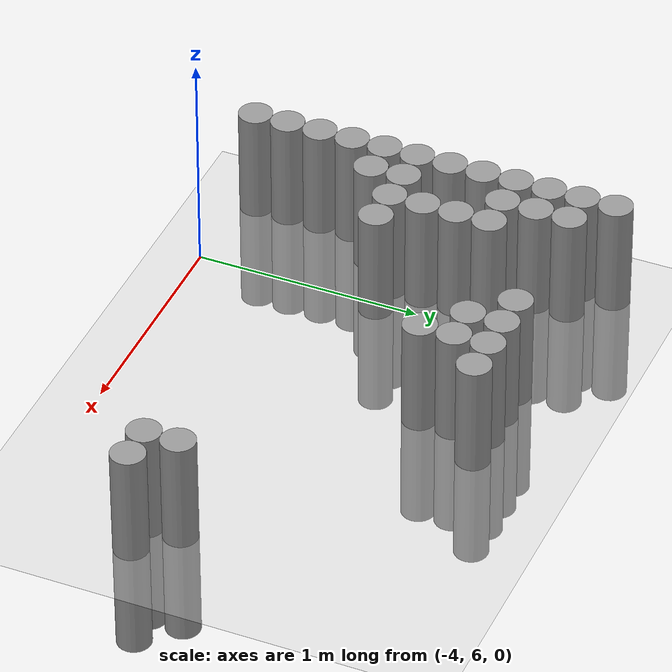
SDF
<sdf version="1.6">
 <world name="default">
  <model name="ground_plane">
   <static>1</static>
   <link name="link">
    <collision name="collision">
     <geometry><plane><normal>0 0 1</normal><size>100 100</size></plane></geometry>
     <surface><friction><ode><mu>100</mu><mu2>50</mu2></ode></friction></surface>
    </collision>
    <visual name="visual">
     <cast_shadows>0</cast_shadows>
     <geometry><plane><normal>0 0 1</normal><size>100 100</size></plane></geometry>
     <material>
      <script><uri>file://media/materials/scripts/gazebo.material</uri><name>Gazebo/Grey</name></script>
     </material>
    </visual>
   </link>
  </model>
  <model name="unit_cylinder_102">
   <pose>-4.425000 6.075000 0.000000 0.000000 0.000000 0.000000</pose>
   <link name="link">
    <inertial>
     <mass>1</mass>
     <inertia><ixx>0.145833</ixx><ixy>0</ixy><ixz>0</ixz><iyy>0.145833</iyy><iyz>0</iyz><izz>0.125</izz></inertia>
    </inertial>
    <collision name="collision">
     <geometry><cylinder><radius>0.075000</radius><length>1</length></cylinder></geometry>
    </collision>
    <visual name="visual">
     <geometry><cylinder><radius>0.075000</radius><length>1</length></cylinder></geometry>
     <material>
      <script><name>Gazebo/Grey</name><uri>file://media/materials/scripts/gazebo.material</uri></script>
     </material>
    </visual>
   </link>
  </model>
  <model name="unit_cylinder_103">
   <pose>-4.425000 6.225000 0.000000 0.000000 0.000000 0.000000</pose>
   <link name="link">
    <inertial>
     <mass>1</mass>
     <inertia><ixx>0.145833</ixx><ixy>0</ixy><ixz>0</ixz><iyy>0.145833</iyy><iyz>0</iyz><izz>0.125</izz></inertia>
    </inertial>
    <collision name="collision">
     <geometry><cylinder><radius>0.075000</radius><length>1</length></cylinder></geometry>
    </collision>
    <visual name="visual">
     <geometry><cylinder><radius>0.075000</radius><length>1</length></cylinder></geometry>
     <material>
      <script><name>Gazebo/Grey</name><uri>file://media/materials/scripts/gazebo.material</uri></script>
     </material>
    </visual>
   </link>
  </model>
  <model name="unit_cylinder_104">
   <pose>-4.425000 6.375000 0.000000 0.000000 0.000000 0.000000</pose>
   <link name="link">
    <inertial>
     <mass>1</mass>
     <inertia><ixx>0.145833</ixx><ixy>0</ixy><ixz>0</ixz><iyy>0.145833</iyy><iyz>0</iyz><izz>0.125</izz></inertia>
    </inertial>
    <collision name="collision">
     <geometry><cylinder><radius>0.075000</radius><length>1</length></cylinder></geometry>
    </collision>
    <visual name="visual">
     <geometry><cylinder><radius>0.075000</radius><length>1</length></cylinder></geometry>
     <material>
      <script><name>Gazebo/Grey</name><uri>file://media/materials/scripts/gazebo.material</uri></script>
     </material>
    </visual>
   </link>
  </model>
  <model name="unit_cylinder_105">
   <pose>-4.425000 6.525000 0.000000 0.000000 0.000000 0.000000</pose>
   <link name="link">
    <inertial>
     <mass>1</mass>
     <inertia><ixx>0.145833</ixx><ixy>0</ixy><ixz>0</ixz><iyy>0.145833</iyy><iyz>0</iyz><izz>0.125</izz></inertia>
    </inertial>
    <collision name="collision">
     <geometry><cylinder><radius>0.075000</radius><length>1</length></cylinder></geometry>
    </collision>
    <visual name="visual">
     <geometry><cylinder><radius>0.075000</radius><length>1</length></cylinder></geometry>
     <material>
      <script><name>Gazebo/Grey</name><uri>file://media/materials/scripts/gazebo.material</uri></script>
     </material>
    </visual>
   </link>
  </model>
  <model name="unit_cylinder_106">
   <pose>-4.425000 6.675000 0.000000 0.000000 0.000000 0.000000</pose>
   <link name="link">
    <inertial>
     <mass>1</mass>
     <inertia><ixx>0.145833</ixx><ixy>0</ixy><ixz>0</ixz><iyy>0.145833</iyy><iyz>0</iyz><izz>0.125</izz></inertia>
    </inertial>
    <collision name="collision">
     <geometry><cylinder><radius>0.075000</radius><length>1</length></cylinder></geometry>
    </collision>
    <visual name="visual">
     <geometry><cylinder><radius>0.075000</radius><length>1</length></cylinder></geometry>
     <material>
      <script><name>Gazebo/Grey</name><uri>file://media/materials/scripts/gazebo.material</uri></script>
     </material>
    </visual>
   </link>
  </model>
  <model name="unit_cylinder_107">
   <pose>-4.425000 6.825000 0.000000 0.000000 0.000000 0.000000</pose>
   <link name="link">
    <inertial>
     <mass>1</mass>
     <inertia><ixx>0.145833</ixx><ixy>0</ixy><ixz>0</ixz><iyy>0.145833</iyy><iyz>0</iyz><izz>0.125</izz></inertia>
    </inertial>
    <collision name="collision">
     <geometry><cylinder><radius>0.075000</radius><length>1</length></cylinder></geometry>
    </collision>
    <visual name="visual">
     <geometry><cylinder><radius>0.075000</radius><length>1</length></cylinder></geometry>
     <material>
      <script><name>Gazebo/Grey</name><uri>file://media/materials/scripts/gazebo.material</uri></script>
     </material>
    </visual>
   </link>
  </model>
  <model name="unit_cylinder_108">
   <pose>-4.425000 6.975000 0.000000 0.000000 0.000000 0.000000</pose>
   <link name="link">
    <inertial>
     <mass>1</mass>
     <inertia><ixx>0.145833</ixx><ixy>0</ixy><ixz>0</ixz><iyy>0.145833</iyy><iyz>0</iyz><izz>0.125</izz></inertia>
    </inertial>
    <collision name="collision">
     <geometry><cylinder><radius>0.075000</radius><length>1</length></cylinder></geometry>
    </collision>
    <visual name="visual">
     <geometry><cylinder><radius>0.075000</radius><length>1</length></cylinder></geometry>
     <material>
      <script><name>Gazebo/Grey</name><uri>file://media/materials/scripts/gazebo.material</uri></script>
     </material>
    </visual>
   </link>
  </model>
  <model name="unit_cylinder_109">
   <pose>-4.425000 7.125000 0.000000 0.000000 0.000000 0.000000</pose>
   <link name="link">
    <inertial>
     <mass>1</mass>
     <inertia><ixx>0.145833</ixx><ixy>0</ixy><ixz>0</ixz><iyy>0.145833</iyy><iyz>0</iyz><izz>0.125</izz></inertia>
    </inertial>
    <collision name="collision">
     <geometry><cylinder><radius>0.075000</radius><length>1</length></cylinder></geometry>
    </collision>
    <visual name="visual">
     <geometry><cylinder><radius>0.075000</radius><length>1</length></cylinder></geometry>
     <material>
      <script><name>Gazebo/Grey</name><uri>file://media/materials/scripts/gazebo.material</uri></script>
     </material>
    </visual>
   </link>
  </model>
  <model name="unit_cylinder_110">
   <pose>-4.425000 7.275000 0.000000 0.000000 0.000000 0.000000</pose>
   <link name="link">
    <inertial>
     <mass>1</mass>
     <inertia><ixx>0.145833</ixx><ixy>0</ixy><ixz>0</ixz><iyy>0.145833</iyy><iyz>0</iyz><izz>0.125</izz></inertia>
    </inertial>
    <collision name="collision">
     <geometry><cylinder><radius>0.075000</radius><length>1</length></cylinder></geometry>
    </collision>
    <visual name="visual">
     <geometry><cylinder><radius>0.075000</radius><length>1</length></cylinder></geometry>
     <material>
      <script><name>Gazebo/Grey</name><uri>file://media/materials/scripts/gazebo.material</uri></script>
     </material>
    </visual>
   </link>
  </model>
  <model name="unit_cylinder_111">
   <pose>-4.425000 7.425000 0.000000 0.000000 0.000000 0.000000</pose>
   <link name="link">
    <inertial>
     <mass>1</mass>
     <inertia><ixx>0.145833</ixx><ixy>0</ixy><ixz>0</ixz><iyy>0.145833</iyy><iyz>0</iyz><izz>0.125</izz></inertia>
    </inertial>
    <collision name="collision">
     <geometry><cylinder><radius>0.075000</radius><length>1</length></cylinder></geometry>
    </collision>
    <visual name="visual">
     <geometry><cylinder><radius>0.075000</radius><length>1</length></cylinder></geometry>
     <material>
      <script><name>Gazebo/Grey</name><uri>file://media/materials/scripts/gazebo.material</uri></script>
     </material>
    </visual>
   </link>
  </model>
  <model name="unit_cylinder_112">
   <pose>-4.425000 7.575000 0.000000 0.000000 0.000000 0.000000</pose>
   <link name="link">
    <inertial>
     <mass>1</mass>
     <inertia><ixx>0.145833</ixx><ixy>0</ixy><ixz>0</ixz><iyy>0.145833</iyy><iyz>0</iyz><izz>0.125</izz></inertia>
    </inertial>
    <collision name="collision">
     <geometry><cylinder><radius>0.075000</radius><length>1</length></cylinder></geometry>
    </collision>
    <visual name="visual">
     <geometry><cylinder><radius>0.075000</radius><length>1</length></cylinder></geometry>
     <material>
      <script><name>Gazebo/Grey</name><uri>file://media/materials/scripts/gazebo.material</uri></script>
     </material>
    </visual>
   </link>
  </model>
  <model name="unit_cylinder_113">
   <pose>-4.425000 7.725000 0.000000 0.000000 0.000000 0.000000</pose>
   <link name="link">
    <inertial>
     <mass>1</mass>
     <inertia><ixx>0.145833</ixx><ixy>0</ixy><ixz>0</ixz><iyy>0.145833</iyy><iyz>0</iyz><izz>0.125</izz></inertia>
    </inertial>
    <collision name="collision">
     <geometry><cylinder><radius>0.075000</radius><length>1</length></cylinder></geometry>
    </collision>
    <visual name="visual">
     <geometry><cylinder><radius>0.075000</radius><length>1</length></cylinder></geometry>
     <material>
      <script><name>Gazebo/Grey</name><uri>file://media/materials/scripts/gazebo.material</uri></script>
     </material>
    </visual>
   </link>
  </model>
  <model name="unit_cylinder_128">
   <pose>-4.275000 6.675000 0.000000 0.000000 0.000000 0.000000</pose>
   <link name="link">
    <inertial>
     <mass>1</mass>
     <inertia><ixx>0.145833</ixx><ixy>0</ixy><ixz>0</ixz><iyy>0.145833</iyy><iyz>0</iyz><izz>0.125</izz></inertia>
    </inertial>
    <collision name="collision">
     <geometry><cylinder><radius>0.075000</radius><length>1</length></cylinder></geometry>
    </collision>
    <visual name="visual">
     <geometry><cylinder><radius>0.075000</radius><length>1</length></cylinder></geometry>
     <material>
      <script><name>Gazebo/Grey</name><uri>file://media/materials/scripts/gazebo.material</uri></script>
     </material>
    </visual>
   </link>
  </model>
  <model name="unit_cylinder_129">
   <pose>-4.275000 6.825000 0.000000 0.000000 0.000000 0.000000</pose>
   <link name="link">
    <inertial>
     <mass>1</mass>
     <inertia><ixx>0.145833</ixx><ixy>0</ixy><ixz>0</ixz><iyy>0.145833</iyy><iyz>0</iyz><izz>0.125</izz></inertia>
    </inertial>
    <collision name="collision">
     <geometry><cylinder><radius>0.075000</radius><length>1</length></cylinder></geometry>
    </collision>
    <visual name="visual">
     <geometry><cylinder><radius>0.075000</radius><length>1</length></cylinder></geometry>
     <material>
      <script><name>Gazebo/Grey</name><uri>file://media/materials/scripts/gazebo.material</uri></script>
     </material>
    </visual>
   </link>
  </model>
  <model name="unit_cylinder_130">
   <pose>-4.275000 7.275000 0.000000 0.000000 0.000000 0.000000</pose>
   <link name="link">
    <inertial>
     <mass>1</mass>
     <inertia><ixx>0.145833</ixx><ixy>0</ixy><ixz>0</ixz><iyy>0.145833</iyy><iyz>0</iyz><izz>0.125</izz></inertia>
    </inertial>
    <collision name="collision">
     <geometry><cylinder><radius>0.075000</radius><length>1</length></cylinder></geometry>
    </collision>
    <visual name="visual">
     <geometry><cylinder><radius>0.075000</radius><length>1</length></cylinder></geometry>
     <material>
      <script><name>Gazebo/Grey</name><uri>file://media/materials/scripts/gazebo.material</uri></script>
     </material>
    </visual>
   </link>
  </model>
  <model name="unit_cylinder_131">
   <pose>-4.275000 7.425000 0.000000 0.000000 0.000000 0.000000</pose>
   <link name="link">
    <inertial>
     <mass>1</mass>
     <inertia><ixx>0.145833</ixx><ixy>0</ixy><ixz>0</ixz><iyy>0.145833</iyy><iyz>0</iyz><izz>0.125</izz></inertia>
    </inertial>
    <collision name="collision">
     <geometry><cylinder><radius>0.075000</radius><length>1</length></cylinder></geometry>
    </collision>
    <visual name="visual">
     <geometry><cylinder><radius>0.075000</radius><length>1</length></cylinder></geometry>
     <material>
      <script><name>Gazebo/Grey</name><uri>file://media/materials/scripts/gazebo.material</uri></script>
     </material>
    </visual>
   </link>
  </model>
  <model name="unit_cylinder_132">
   <pose>-4.275000 7.575000 0.000000 0.000000 0.000000 0.000000</pose>
   <link name="link">
    <inertial>
     <mass>1</mass>
     <inertia><ixx>0.145833</ixx><ixy>0</ixy><ixz>0</ixz><iyy>0.145833</iyy><iyz>0</iyz><izz>0.125</izz></inertia>
    </inertial>
    <collision name="collision">
     <geometry><cylinder><radius>0.075000</radius><length>1</length></cylinder></geometry>
    </collision>
    <visual name="visual">
     <geometry><cylinder><radius>0.075000</radius><length>1</length></cylinder></geometry>
     <material>
      <script><name>Gazebo/Grey</name><uri>file://media/materials/scripts/gazebo.material</uri></script>
     </material>
    </visual>
   </link>
  </model>
  <model name="unit_cylinder_139">
   <pose>-4.125000 6.825000 0.000000 0.000000 0.000000 0.000000</pose>
   <link name="link">
    <inertial>
     <mass>1</mass>
     <inertia><ixx>0.145833</ixx><ixy>0</ixy><ixz>0</ixz><iyy>0.145833</iyy><iyz>0</iyz><izz>0.125</izz></inertia>
    </inertial>
    <collision name="collision">
     <geometry><cylinder><radius>0.075000</radius><length>1</length></cylinder></geometry>
    </collision>
    <visual name="visual">
     <geometry><cylinder><radius>0.075000</radius><length>1</length></cylinder></geometry>
     <material>
      <script><name>Gazebo/Grey</name><uri>file://media/materials/scripts/gazebo.material</uri></script>
     </material>
    </visual>
   </link>
  </model>
  <model name="unit_cylinder_140">
   <pose>-4.125000 6.975000 0.000000 0.000000 0.000000 0.000000</pose>
   <link name="link">
    <inertial>
     <mass>1</mass>
     <inertia><ixx>0.145833</ixx><ixy>0</ixy><ixz>0</ixz><iyy>0.145833</iyy><iyz>0</iyz><izz>0.125</izz></inertia>
    </inertial>
    <collision name="collision">
     <geometry><cylinder><radius>0.075000</radius><length>1</length></cylinder></geometry>
    </collision>
    <visual name="visual">
     <geometry><cylinder><radius>0.075000</radius><length>1</length></cylinder></geometry>
     <material>
      <script><name>Gazebo/Grey</name><uri>file://media/materials/scripts/gazebo.material</uri></script>
     </material>
    </visual>
   </link>
  </model>
  <model name="unit_cylinder_141">
   <pose>-4.125000 7.125000 0.000000 0.000000 0.000000 0.000000</pose>
   <link name="link">
    <inertial>
     <mass>1</mass>
     <inertia><ixx>0.145833</ixx><ixy>0</ixy><ixz>0</ixz><iyy>0.145833</iyy><iyz>0</iyz><izz>0.125</izz></inertia>
    </inertial>
    <collision name="collision">
     <geometry><cylinder><radius>0.075000</radius><length>1</length></cylinder></geometry>
    </collision>
    <visual name="visual">
     <geometry><cylinder><radius>0.075000</radius><length>1</length></cylinder></geometry>
     <material>
      <script><name>Gazebo/Grey</name><uri>file://media/materials/scripts/gazebo.material</uri></script>
     </material>
    </visual>
   </link>
  </model>
  <model name="unit_cylinder_142">
   <pose>-4.125000 7.275000 0.000000 0.000000 0.000000 0.000000</pose>
   <link name="link">
    <inertial>
     <mass>1</mass>
     <inertia><ixx>0.145833</ixx><ixy>0</ixy><ixz>0</ixz><iyy>0.145833</iyy><iyz>0</iyz><izz>0.125</izz></inertia>
    </inertial>
    <collision name="collision">
     <geometry><cylinder><radius>0.075000</radius><length>1</length></cylinder></geometry>
    </collision>
    <visual name="visual">
     <geometry><cylinder><radius>0.075000</radius><length>1</length></cylinder></geometry>
     <material>
      <script><name>Gazebo/Grey</name><uri>file://media/materials/scripts/gazebo.material</uri></script>
     </material>
    </visual>
   </link>
  </model>
  <model name="unit_cylinder_147">
   <pose>-3.975000 6.825000 0.000000 0.000000 0.000000 0.000000</pose>
   <link name="link">
    <inertial>
     <mass>1</mass>
     <inertia><ixx>0.145833</ixx><ixy>0</ixy><ixz>0</ixz><iyy>0.145833</iyy><iyz>0</iyz><izz>0.125</izz></inertia>
    </inertial>
    <collision name="collision">
     <geometry><cylinder><radius>0.075000</radius><length>1</length></cylinder></geometry>
    </collision>
    <visual name="visual">
     <geometry><cylinder><radius>0.075000</radius><length>1</length></cylinder></geometry>
     <material>
      <script><name>Gazebo/Grey</name><uri>file://media/materials/scripts/gazebo.material</uri></script>
     </material>
    </visual>
   </link>
  </model>
  <model name="unit_cylinder_149">
   <pose>-3.675000 7.575000 0.000000 0.000000 0.000000 0.000000</pose>
   <link name="link">
    <inertial>
     <mass>1</mass>
     <inertia><ixx>0.145833</ixx><ixy>0</ixy><ixz>0</ixz><iyy>0.145833</iyy><iyz>0</iyz><izz>0.125</izz></inertia>
    </inertial>
    <collision name="collision">
     <geometry><cylinder><radius>0.075000</radius><length>1</length></cylinder></geometry>
    </collision>
    <visual name="visual">
     <geometry><cylinder><radius>0.075000</radius><length>1</length></cylinder></geometry>
     <material>
      <script><name>Gazebo/Grey</name><uri>file://media/materials/scripts/gazebo.material</uri></script>
     </material>
    </visual>
   </link>
  </model>
  <model name="unit_cylinder_150">
   <pose>-3.525000 7.425000 0.000000 0.000000 0.000000 0.000000</pose>
   <link name="link">
    <inertial>
     <mass>1</mass>
     <inertia><ixx>0.145833</ixx><ixy>0</ixy><ixz>0</ixz><iyy>0.145833</iyy><iyz>0</iyz><izz>0.125</izz></inertia>
    </inertial>
    <collision name="collision">
     <geometry><cylinder><radius>0.075000</radius><length>1</length></cylinder></geometry>
    </collision>
    <visual name="visual">
     <geometry><cylinder><radius>0.075000</radius><length>1</length></cylinder></geometry>
     <material>
      <script><name>Gazebo/Grey</name><uri>file://media/materials/scripts/gazebo.material</uri></script>
     </material>
    </visual>
   </link>
  </model>
  <model name="unit_cylinder_151">
   <pose>-3.525000 7.575000 0.000000 0.000000 0.000000 0.000000</pose>
   <link name="link">
    <inertial>
     <mass>1</mass>
     <inertia><ixx>0.145833</ixx><ixy>0</ixy><ixz>0</ixz><iyy>0.145833</iyy><iyz>0</iyz><izz>0.125</izz></inertia>
    </inertial>
    <collision name="collision">
     <geometry><cylinder><radius>0.075000</radius><length>1</length></cylinder></geometry>
    </collision>
    <visual name="visual">
     <geometry><cylinder><radius>0.075000</radius><length>1</length></cylinder></geometry>
     <material>
      <script><name>Gazebo/Grey</name><uri>file://media/materials/scripts/gazebo.material</uri></script>
     </material>
    </visual>
   </link>
  </model>
  <model name="unit_cylinder_153">
   <pose>-3.375000 7.275000 0.000000 0.000000 0.000000 0.000000</pose>
   <link name="link">
    <inertial>
     <mass>1</mass>
     <inertia><ixx>0.145833</ixx><ixy>0</ixy><ixz>0</ixz><iyy>0.145833</iyy><iyz>0</iyz><izz>0.125</izz></inertia>
    </inertial>
    <collision name="collision">
     <geometry><cylinder><radius>0.075000</radius><length>1</length></cylinder></geometry>
    </collision>
    <visual name="visual">
     <geometry><cylinder><radius>0.075000</radius><length>1</length></cylinder></geometry>
     <material>
      <script><name>Gazebo/Grey</name><uri>file://media/materials/scripts/gazebo.material</uri></script>
     </material>
    </visual>
   </link>
  </model>
  <model name="unit_cylinder_154">
   <pose>-3.375000 7.425000 0.000000 0.000000 0.000000 0.000000</pose>
   <link name="link">
    <inertial>
     <mass>1</mass>
     <inertia><ixx>0.145833</ixx><ixy>0</ixy><ixz>0</ixz><iyy>0.145833</iyy><iyz>0</iyz><izz>0.125</izz></inertia>
    </inertial>
    <collision name="collision">
     <geometry><cylinder><radius>0.075000</radius><length>1</length></cylinder></geometry>
    </collision>
    <visual name="visual">
     <geometry><cylinder><radius>0.075000</radius><length>1</length></cylinder></geometry>
     <material>
      <script><name>Gazebo/Grey</name><uri>file://media/materials/scripts/gazebo.material</uri></script>
     </material>
    </visual>
   </link>
  </model>
  <model name="unit_cylinder_155">
   <pose>-3.375000 7.575000 0.000000 0.000000 0.000000 0.000000</pose>
   <link name="link">
    <inertial>
     <mass>1</mass>
     <inertia><ixx>0.145833</ixx><ixy>0</ixy><ixz>0</ixz><iyy>0.145833</iyy><iyz>0</iyz><izz>0.125</izz></inertia>
    </inertial>
    <collision name="collision">
     <geometry><cylinder><radius>0.075000</radius><length>1</length></cylinder></geometry>
    </collision>
    <visual name="visual">
     <geometry><cylinder><radius>0.075000</radius><length>1</length></cylinder></geometry>
     <material>
      <script><name>Gazebo/Grey</name><uri>file://media/materials/scripts/gazebo.material</uri></script>
     </material>
    </visual>
   </link>
  </model>
  <model name="unit_cylinder_159">
   <pose>-3.225000 7.575000 0.000000 0.000000 0.000000 0.000000</pose>
   <link name="link">
    <inertial>
     <mass>1</mass>
     <inertia><ixx>0.145833</ixx><ixy>0</ixy><ixz>0</ixz><iyy>0.145833</iyy><iyz>0</iyz><izz>0.125</izz></inertia>
    </inertial>
    <collision name="collision">
     <geometry><cylinder><radius>0.075000</radius><length>1</length></cylinder></geometry>
    </collision>
    <visual name="visual">
     <geometry><cylinder><radius>0.075000</radius><length>1</length></cylinder></geometry>
     <material>
      <script><name>Gazebo/Grey</name><uri>file://media/materials/scripts/gazebo.material</uri></script>
     </material>
    </visual>
   </link>
  </model>
  <model name="unit_cylinder_166">
   <pose>-2.325000 6.525000 0.000000 0.000000 0.000000 0.000000</pose>
   <link name="link">
    <inertial>
     <mass>1</mass>
     <inertia><ixx>0.145833</ixx><ixy>0</ixy><ixz>0</ixz><iyy>0.145833</iyy><iyz>0</iyz><izz>0.125</izz></inertia>
    </inertial>
    <collision name="collision">
     <geometry><cylinder><radius>0.075000</radius><length>1</length></cylinder></geometry>
    </collision>
    <visual name="visual">
     <geometry><cylinder><radius>0.075000</radius><length>1</length></cylinder></geometry>
     <material>
      <script><name>Gazebo/Grey</name><uri>file://media/materials/scripts/gazebo.material</uri></script>
     </material>
    </visual>
   </link>
  </model>
  <model name="unit_cylinder_167">
   <pose>-2.325000 6.675000 0.000000 0.000000 0.000000 0.000000</pose>
   <link name="link">
    <inertial>
     <mass>1</mass>
     <inertia><ixx>0.145833</ixx><ixy>0</ixy><ixz>0</ixz><iyy>0.145833</iyy><iyz>0</iyz><izz>0.125</izz></inertia>
    </inertial>
    <collision name="collision">
     <geometry><cylinder><radius>0.075000</radius><length>1</length></cylinder></geometry>
    </collision>
    <visual name="visual">
     <geometry><cylinder><radius>0.075000</radius><length>1</length></cylinder></geometry>
     <material>
      <script><name>Gazebo/Grey</name><uri>file://media/materials/scripts/gazebo.material</uri></script>
     </material>
    </visual>
   </link>
  </model>
  <model name="unit_cylinder_168">
   <pose>-2.175000 6.525000 0.000000 0.000000 0.000000 0.000000</pose>
   <link name="link">
    <inertial>
     <mass>1</mass>
     <inertia><ixx>0.145833</ixx><ixy>0</ixy><ixz>0</ixz><iyy>0.145833</iyy><iyz>0</iyz><izz>0.125</izz></inertia>
    </inertial>
    <collision name="collision">
     <geometry><cylinder><radius>0.075000</radius><length>1</length></cylinder></geometry>
    </collision>
    <visual name="visual">
     <geometry><cylinder><radius>0.075000</radius><length>1</length></cylinder></geometry>
     <material>
      <script><name>Gazebo/Grey</name><uri>file://media/materials/scripts/gazebo.material</uri></script>
     </material>
    </visual>
   </link>
  </model>
 </world>
</sdf>
